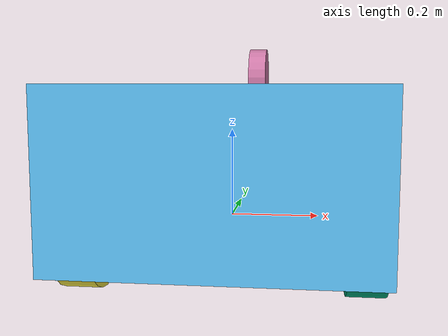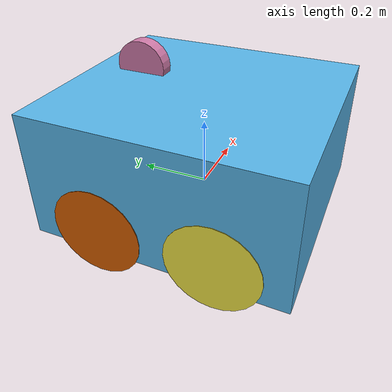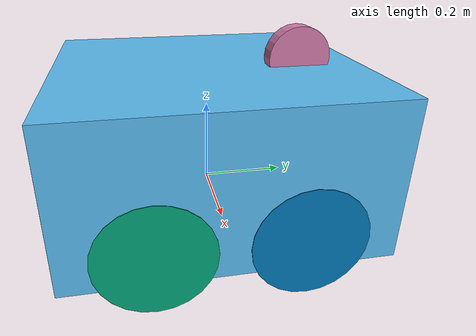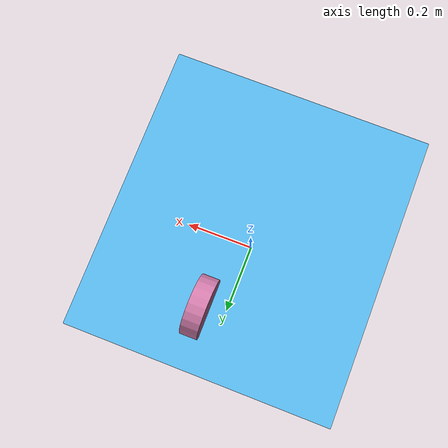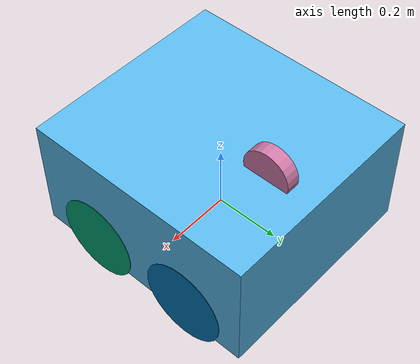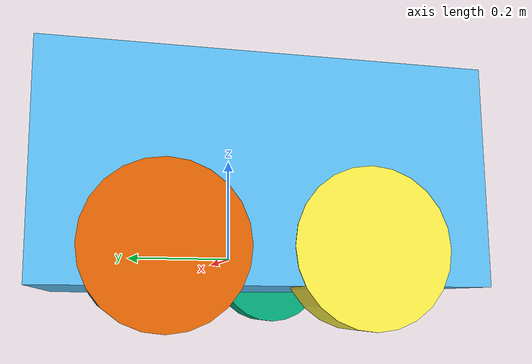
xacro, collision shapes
<?xml version="1.0"?>
<robot name="neslihan" xmlns:xacro="http://www.ros.org/wiki/xacro">
    <xacro:include filename="$(find neslihan_action)/urdf/neslihan_base.xacro" />
    <xacro:include filename="$(find neslihan_action)/urdf/neslihan_inertia.xacro" />
    <xacro:include filename="$(find neslihan_action)/urdf/neslihan_wheel.xacro" />
    <xacro:include filename="$(find neslihan_action)/urdf/neslihan_lidar.xacro" />
    <xacro:include filename="$(find neslihan_action)/urdf/neslihan_imu.xacro" />

    <!-- Chassis -->
    <xacro:neslihan_base />

    <!-- Wheels -->
    <xacro:neslihan_wheel xyz_pose="0.29462 -0.163 0.0" rpy_pose="-1.570796 0 0" side1="right" side2="front" />
    <xacro:neslihan_wheel xyz_pose="-0.29462 -0.163 0.0" rpy_pose="-1.570796 0 0" side1="left" side2="front" />
    <xacro:neslihan_wheel xyz_pose="0.29462 0.163 0.0" rpy_pose="-1.570796 0 0" side1="right" side2="back" />
    <xacro:neslihan_wheel xyz_pose="-0.29462 0.163 0.0" rpy_pose="-1.570796 0 0" side1="left" side2="back" />

    <!-- LIDAR -->
    <xacro:neslihan_lidar />

    <!-- IMU Sensor-->
    <xacro:neslihan_imu />

</robot>

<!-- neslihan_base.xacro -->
<robot xmlns:xacro="http://www.ros.org/wiki/xacro">
    <xacro:macro name="neslihan_base">
        <!-- Robot center to the ground -->
        <link name="robot_footprint" >
            <pose>0 0 0 0 0 0</pose>
        </link>

        <link name="base_link">
            <pose>0 0 0.1 0 0 0</pose>
            <visual>
                <origin xyz="0 0 0.122405" rpy="0 0 0" />
                <geometry>
                    <mesh filename="package://urdf/meshes/IPHARobot_Base.stl" scale="0.001 0.001 0.001" />
                </geometry>
            </visual>
            <collision>
                <origin xyz="0 0 0.122405" rpy="0 0 0" />
                <geometry>
                    <box size="0.66602 0.72288 0.36481" />
                </geometry>
            </collision>
            <xacro:box_inertial x="0.66602" y="0.72288" z="0.36481" mass="10.0" />
        </link>

        <joint name="base_joint" type="fixed" >
            <origin xyz="0 0 0" rpy="0 0 0" />
            <parent link="robot_footprint" />
            <child link="base_link" />
        </joint>

        <!-- Base(Chassis)-->
        <gazebo reference="base_link">
            <material value="Gazebo/Blue" />
        </gazebo>
    </xacro:macro>
</robot>

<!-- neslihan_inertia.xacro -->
<!-- Thanks to Martin Guenther
  see https://gitpose.com/uos/uos_tools/blob/fuerte/uos_common_urdf/common.xacro and
  see http://answers.gazebosim.org/question/4372/the-inertia-matrix-explained/ -->
<robot name="neslihan" xmlns:xacro="http://ros.org/wiki/xacro">
  <property name="M_PI" value="3.1415926535897931" />

  <!-- see https://secure.wikimedia.org/wikipedia/en/wiki/List_of_moment_of_inertia_tensors -->

  <!-- #################### versions without origin #################### -->
  <xacro:macro name="sphere_inertial" params="radius mass">
    <inertial>
      <mass value="${mass}" />
      <origin xyz="0 0 0" />
      <inertia ixx="${0.4 * mass * radius * radius}" ixy="0.0" ixz="0.0"
        iyy="${0.4 * mass * radius * radius}" iyz="0.0"
        izz="${0.4 * mass * radius * radius}" />
    </inertial>
  </xacro:macro>

  <xacro:macro name="cylinder_inertial" params="radius length mass">
    <inertial>
      <mass value="${mass}" />
      <origin xyz="0 0 0" />
      <inertia ixx="${0.0833333 * mass * (3 * radius * radius + length * length)}" ixy="0.0" ixz="0.0"
        iyy="${0.0833333 * mass * (3 * radius * radius + length * length)}" iyz="0.0"
        izz="${0.5 * mass * radius * radius}" />
    </inertial>
  </xacro:macro>

  <xacro:macro name="box_inertial" params="x y z mass">
    <inertial>
      <mass value="${mass}" />
      <origin xyz="0 0 0" />
      <inertia ixx="${0.0833333 * mass * (y*y + z*z)}" ixy="0.0" ixz="0.0"
        iyy="${0.0833333 * mass * (x*x + z*z)}" iyz="0.0"
        izz="${0.0833333 * mass * (x*x + y*y)}" />
    </inertial>
  </xacro:macro>

  <!-- #################### versions with origin #################### -->
  <xacro:macro name="sphere_inertial_with_origin" params="radius mass *origin">
    <inertial>
      <mass value="${mass}" />
      <insert_block name="origin" />
      <inertia ixx="${0.4 * mass * radius * radius}" ixy="0.0" ixz="0.0"
        iyy="${0.4 * mass * radius * radius}" iyz="0.0"
        izz="${0.4 * mass * radius * radius}" />
    </inertial>
  </xacro:macro>

  <xacro:macro name="cylinder_inertial_with_origin" params="radius length mass *origin">
    <inertial>
      <mass value="${mass}" />
      <insert_block name="origin" />
      <inertia ixx="${0.0833333 * mass * (3 * radius * radius + length * length)}" ixy="0.0" ixz="0.0"
        iyy="${0.0833333 * mass * (3 * radius * radius + length * length)}" iyz="0.0"
        izz="${0.5 * mass * radius * radius}" />
    </inertial>
  </xacro:macro>

  <xacro:macro name="box_inertial_with_origin" params="x y z mass *origin">
    <inertial>
      <mass value="${mass}" />
      <insert_block name="origin" />
      <inertia ixx="${0.0833333 * mass * (y*y + z*z)}" ixy="0.0" ixz="0.0"
        iyy="${0.0833333 * mass * (x*x + z*z)}" iyz="0.0"
        izz="${0.0833333 * mass * (x*x + y*y)}" />
    </inertial>
  </xacro:macro>

</robot>

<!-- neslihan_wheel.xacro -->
<robot xmlns:xacro="http://ros.org/wiki/xacro">
  <xacro:macro name="neslihan_wheel" params="xyz_pose rpy_pose side1 side2">

    <link name='wheel_${side1}_${side2}_link'>
      <pose>0 0 0 0 0 0</pose>
      <visual>
        <origin xyz="0 0 0" rpy=" 0 0 1.570796"/>
        <geometry>
          <mesh filename="package://urdf/meshes/IPHARobot_Wheel.stl" scale="0.001 0.001 0.001"/>
        </geometry>
      </visual>
      <collision>
        <origin xyz="0 0 0" rpy="0 1.570796 0 "/>
        <geometry>
          <cylinder radius="0.13" length="0.08"/>
        </geometry>
      </collision>
      <xacro:cylinder_inertial radius="0.13" length="0.08" mass="1.605"/>
    </link>

    <joint name="wheel_${side1}_${side2}_base" type="continuous">
      <origin xyz="${xyz_pose}" rpy="${rpy_pose}"/>
      <parent link="base_link"/>
      <child link="wheel_${side1}_${side2}_link"/>
      <joint_properties damping="0.1" friction="0.1"/>
    </joint>

    <gazebo reference="wheel_${side1}_${side2}_link">
      <material value="Gazebo/FlatBlack"/>
      <mu1>1.16</mu1>
      <mu2>1.16</mu2>
      <kp>5000000.0</kp>
      <kd>10.0</kd>
      <maxVel>4.0</maxVel>
      <fdir1>0 0 0</fdir1>
      <turnGravityOff>false</turnGravityOff>
    </gazebo>

  <!-- Transmission is important to link the joints and the controller -->
    <transmission name="wheel_${side1}_${side2}_trans">
      <type>transmission_interface/SimpleTransmission</type>
      <joint name="wheel_${side1}_${side2}_base"/>
      <actuator name="wheel_${side1}_${side2}_base_motor">
        <hardwareInterface>EffortJointInterface</hardwareInterface>
        <mechanicalReduction>1</mechanicalReduction>
      </actuator>
    </transmission>

  </xacro:macro>
 </robot>

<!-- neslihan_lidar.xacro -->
<robot xmlns:xacro="http://www.ros.org/wiki/xacro">
    <xacro:macro name="neslihan_lidar" >

        <link name="scan_link" >
            <pose>0 0 0 0 0 0</pose>
            <visual>
                <origin xyz="0 0 0" rpy="1.570796 0 -1.570796" />
                <geometry>
                    <mesh filename="package://urdf/meshes/IPHARobot_YDLidar_G2.stl" scale="0.001 0.001 0.001" />
                </geometry>
            </visual>
            <collision>
                <origin xyz="0 0 0" rpy="1.570796 0 -1.570796" />
                <geometry>
                    <cylinder radius="0.0737" length="0.0425"/>
                </geometry>
            </collision>
            <xacro:cylinder_inertial radius="0.0737" length="0.0425" mass="0.5" />
        </link>

        <joint name="scan_joint" type="fixed">
            <origin xyz="0.045 0.21 0.322405" rpy="0 0 0" />
            <parent link="base_link" />
            <child link="scan_link" />
            <axis xyz="0 0 1" />
        </joint>

        <!-- LIDAR -->
        <gazebo reference="scan_link" >
            <material value="Gazebo/Red" />
            <sensor type="ray" name="lidar" >
                <tf_prefix>ipharobotv4</tf_prefix>
                <pose>0 0 0 0 0 0</pose>
                <always_on>true</always_on>
                <visualize>false</visualize>
                <update_rate>10</update_rate>
                <ray>
                    <scan>
                        <horizontal>
                            <samples>720</samples>
                            <resolution>1</resolution>
                            <min_angle>-3.141592</min_angle>
                            <max_angle>3.141592</max_angle>
                        </horizontal>
                    </scan>
                    <range>
                        <min>0.12</min>
                        <max>16.0</max>
                        <resolution>0.03</resolution>
                    </range>
                    <noise>
                        <type>gaussian</type>
                        <mean>0.0</mean>
                        <stddev>0.01</stddev>
                    </noise>
                </ray>
                <plugin name="laser_scan_plugin" filename="libgazebo_ros_laser.so" >
                    <output_type>sensor_msgs/LaserScan</output_type>
                    <robotNamespace>ipharobotv4</robotNamespace>
                    <topicName>scan</topicName>
                    <frameName>scan_link</frameName>
                </plugin>
            </sensor>
        </gazebo>
    </xacro:macro>
</robot>

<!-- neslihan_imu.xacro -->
<robot xmlns:xacro="http://www.ros.org/wiki/xacro">
    <xacro:macro name="neslihan_imu" >
        <!-- IMU Sensor-->
        <link name="imu_link">
            <pose>0 0 0 0 0 0</pose>
            <visual>
                <origin xyz="0 0 0.127405" rpy="0 0 0" />
                <geometry>
                    <mesh filename="package://urdf/meshes/IPHARobot_IMU.stl" scale="0.001 0.001 0.001"/>
                </geometry>
            </visual>
            <collision>
                <origin xyz="0 0 0.127405" rpy="0 0 0" />
                <geometry>
                    <box size="0.026 0.0155 0.0016" />
                </geometry>
            </collision>
            <xacro:box_inertial x="0.026" y="0.0155" z="0.0016" mass="0.001" />
        </link>

        <joint name="imu_joint" type="fixed">
            <origin xyz="0 0 0.0016" rpy="0.0 0.0 0.0"/>
            <parent link="base_link"/>
            <child link="imu_link"/>
        </joint>

        <!-- IMU Sensor -->
        <gazebo reference="imu_link" >
            <gravity>true</gravity>
            <sensor name="imu_sensor" type="imu">
                <always_on>true</always_on>
                <update_rate>10.0</update_rate>
                <visualize>true</visualize>
                <topic>imu</topic>
                <plugin name="imu_plugin" filename="libgazebo_ros_imu_sensor.so" >
                    <robotNamespace>ipharobotv4</robotNamespace>
                    <topicName>imu</topicName>
                    <bodyName>imu_link</bodyName>
                    <updateRateHZ>10.0</updateRateHZ>
                    <gaussianNoise>0.0</gaussianNoise>
                    <xyzOffset>0 0 0</xyzOffset>
                    <rpyOffset>0 0 0</rpyOffset>
                    <frameName>imu_link</frameName>
                    <initialOrientationAsReference>false</initialOrientationAsReference>
                    <imu>
                        <angular_velocity>
                            <x>
                            <noise>
                                <type>gaussian</type>
                                <rate>
                                <mean>0.0</mean>
                                <stddev>2e-4</stddev>
                                <bias_mean>0.0000075</bias_mean>
                                <bias_stddev>0.0000008</bias_stddev>
                                </rate>
                            </noise>
                            </x>
                            <y>
                            <noise>
                                <type>gaussian</type>
                                <rate>
                                <mean>0.0</mean>
                                <stddev>2e-4</stddev>
                                <bias_mean>0.0000075</bias_mean>
                                <bias_stddev>0.0000008</bias_stddev>
                                </rate>
                            </noise>
                            </y>
                            <z>
                            <noise>
                                <type>gaussian</type>
                                <rate>
                                <mean>0.0</mean>
                                <stddev>2e-4</stddev>
                                <bias_mean>0.0000075</bias_mean>
                                <bias_stddev>0.0000008</bias_stddev>
                                </rate>
                            </noise>
                            </z>
                        </angular_velocity>
                        <linear_acceleration>
                            <x>
                            <noise>
                                <type>gaussian</type>
                                <mean>0.0</mean>
                                <stddev>1.7e-2</stddev>
                                <bias_mean>0.1</bias_mean>
                                <bias_stddev>0.001</bias_stddev>
                            </noise>
                            </x>
                            <y>
                            <noise>
                                <type>gaussian</type>
                                <mean>0.0</mean>
                                <stddev>1.7e-2</stddev>
                                <bias_mean>0.1</bias_mean>
                                <bias_stddev>0.001</bias_stddev>
                            </noise>
                            </y>
                            <z>
                            <noise>
                                <type>gaussian</type>
                                <mean>0.0</mean>
                                <stddev>1.7e-2</stddev>
                                <bias_mean>0.1</bias_mean>
                                <bias_stddev>0.001</bias_stddev>
                            </noise>
                            </z>
                        </linear_acceleration>
                    </imu>
                </plugin>
                <pose>0 0 0 0 0 0</pose>
            </sensor>
        </gazebo>
    </xacro:macro>
</robot>
